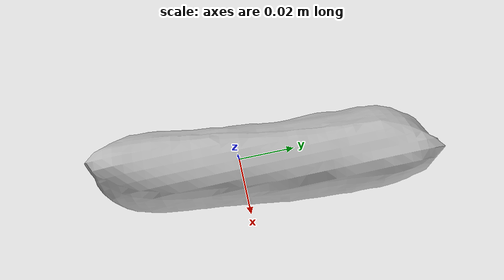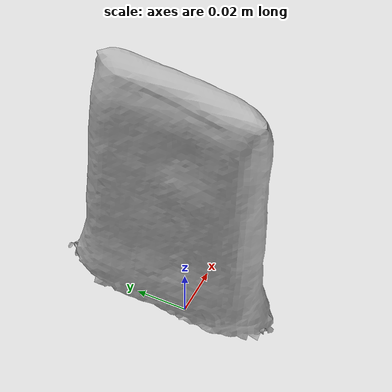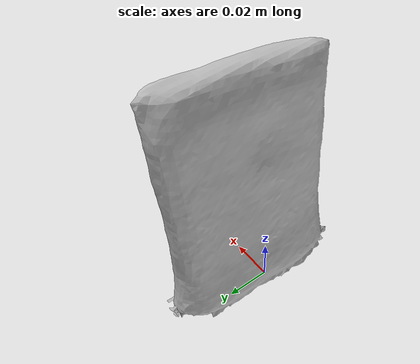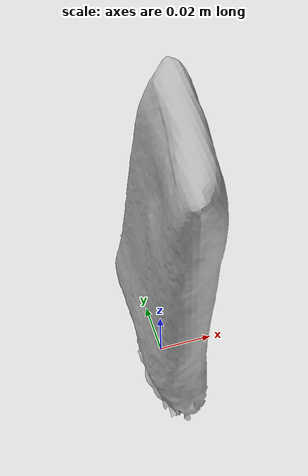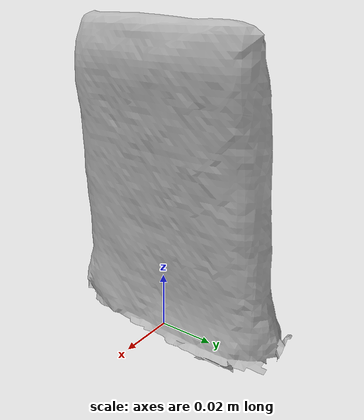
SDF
<?xml version="1.0" ?>
<sdf version="1.4">
  <model name="026_sponge">
    <pose>0 0 0  0 0 0</pose>
    <link name="body">
      <inertial>
        <!-- Volume:  1.2625460800e-04 -->
        <mass> 1.0 </mass>
        <!-- Center of mass:  4.7174300000e-03  5.0721900000e-03  5.5720960000e-02 -->
        <pose>  4.7174300000e-03  5.0721900000e-03  5.5720960000e-02 0 0 0 </pose>
        <!-- Inertia matrix -->
        <inertia>
          <ixx>  1.2044817762e-03 </ixx>
          <ixy> -2.6645103520e-05 </ixy>
          <ixz> -8.3934266383e-05 </ixz>
          <iyy>  8.7431852943e-04 </iyy>
          <iyz>  7.4828191617e-06 </iyz>
          <izz>  4.0604475046e-04 </izz>
        </inertia>
      </inertial>
      <visual name="visual">
        <geometry>
          <mesh>
            <uri>model://026_sponge/nontextured.stl</uri>
          </mesh>
        </geometry>
      </visual>
      <collision name="collision">
        <geometry>
          <mesh>
            <uri>model://026_sponge/nontextured.stl</uri>
          </mesh>
        </geometry>
        <max_contacts>10</max_contacts>
        <surface>
          <friction>
            <ode>
              <mu>0.8</mu>
              <mu2>0.8</mu2>
              <slip1>0</slip1>
              <slip2>0</slip2>
            </ode>
            <torsional>
              <ode/>
            </torsional>
          </friction>
          <contact>
            <ode>
              <kp>1000000.0</kp>
              <kd>1.0</kd>
              <max_vel>0.0</max_vel>
            </ode>
          </contact>
        </surface>
      </collision>
    </link>
  </model>
</sdf>
